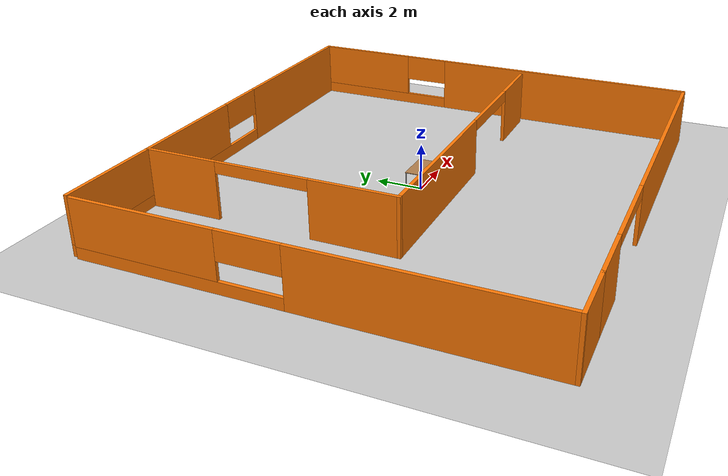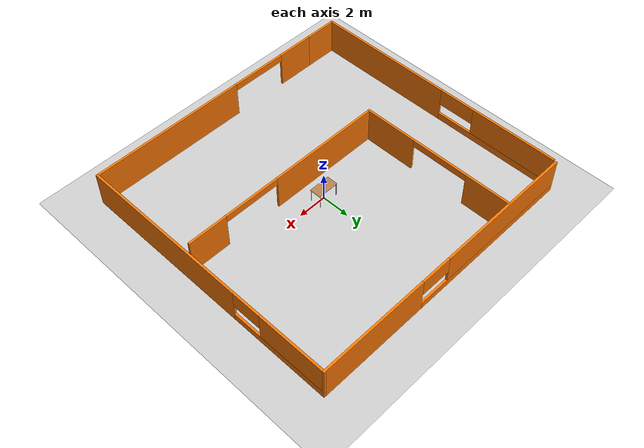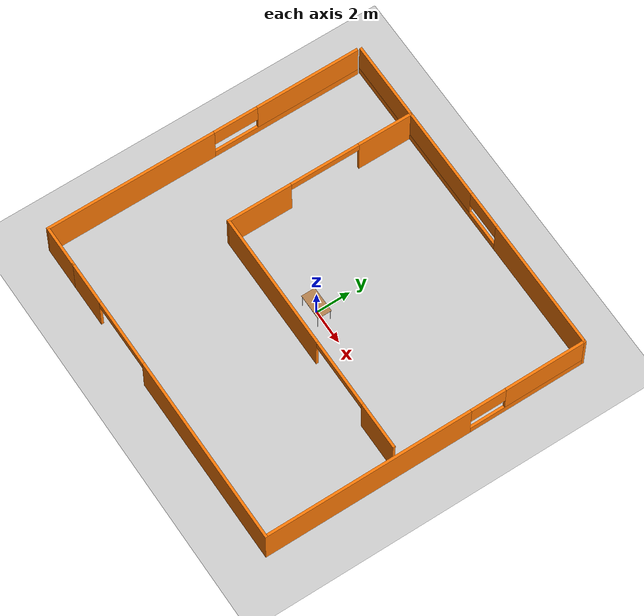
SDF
<sdf version="1.6">
 <world name="default">
  <include><uri>model://ground_plane</uri></include>
  <model name="ground_plane">
   <static>1</static>
   <link name="link">
    <collision name="collision">
     <geometry><plane><normal>0 0 1</normal><size>100 100</size></plane></geometry>
     <surface>
      <contact><collide_bitmask>65535</collide_bitmask></contact>
      <friction><ode><mu>100</mu><mu2>50</mu2></ode></friction>
     </surface>
    </collision>
    <visual name="visual">
     <cast_shadows>0</cast_shadows>
     <geometry><plane><normal>0 0 1</normal><size>100 100</size></plane></geometry>
     <material>
      <script><uri>file://media/materials/scripts/gazebo.material</uri><name>Gazebo/Grey</name></script>
     </material>
    </visual>
   </link>
  </model>
  <model name="table">
   <static>1</static>
   <link name="link">
    <collision name="surface">
     <pose>0 0 1 0 -0 0</pose>
     <geometry><box><size>1.5 0.8 0.03</size></box></geometry>
     <surface><friction><ode><mu>0.6</mu><mu2>0.6</mu2></ode></friction></surface>
    </collision>
    <visual name="visual1">
     <pose>0 0 1 0 -0 0</pose>
     <geometry><box><size>1.5 0.8 0.03</size></box></geometry>
     <material>
      <script><uri>file://media/materials/scripts/gazebo.material</uri><name>Gazebo/Wood</name></script>
     </material>
    </visual>
    <collision name="front_left_leg">
     <pose>0.68 0.38 0.5 0 -0 0</pose>
     <geometry><cylinder><radius>0.02</radius><length>1</length></cylinder></geometry>
    </collision>
    <visual name="front_left_leg">
     <pose>0.68 0.38 0.5 0 -0 0</pose>
     <geometry><cylinder><radius>0.02</radius><length>1</length></cylinder></geometry>
     <material>
      <script><uri>file://media/materials/scripts/gazebo.material</uri><name>Gazebo/Grey</name></script>
     </material>
    </visual>
    <collision name="front_right_leg">
     <pose>0.68 -0.38 0.5 0 -0 0</pose>
     <geometry><cylinder><radius>0.02</radius><length>1</length></cylinder></geometry>
    </collision>
    <visual name="front_right_leg">
     <pose>0.68 -0.38 0.5 0 -0 0</pose>
     <geometry><cylinder><radius>0.02</radius><length>1</length></cylinder></geometry>
     <material>
      <script><uri>file://media/materials/scripts/gazebo.material</uri><name>Gazebo/Grey</name></script>
     </material>
    </visual>
    <collision name="back_right_leg">
     <pose>-0.68 -0.38 0.5 0 -0 0</pose>
     <geometry><cylinder><radius>0.02</radius><length>1</length></cylinder></geometry>
    </collision>
    <visual name="back_right_leg">
     <pose>-0.68 -0.38 0.5 0 -0 0</pose>
     <geometry><cylinder><radius>0.02</radius><length>1</length></cylinder></geometry>
     <material>
      <script><uri>file://media/materials/scripts/gazebo.material</uri><name>Gazebo/Grey</name></script>
     </material>
    </visual>
    <collision name="back_left_leg">
     <pose>-0.68 0.38 0.5 0 -0 0</pose>
     <geometry><cylinder><radius>0.02</radius><length>1</length></cylinder></geometry>
    </collision>
    <visual name="back_left_leg">
     <pose>-0.68 0.38 0.5 0 -0 0</pose>
     <geometry><cylinder><radius>0.02</radius><length>1</length></cylinder></geometry>
     <material>
      <script><uri>file://media/materials/scripts/gazebo.material</uri><name>Gazebo/Grey</name></script>
     </material>
    </visual>
   </link>
  </model>
  <model name="buildingmodel">
   <pose>-0.320081 0.0932 0 0 -0 0</pose>
   <link name="Wall_16">
    <pose>1.175 -9.3 0 0 -0 0</pose>
    <visual name="Wall_16_Visual_0">
     <pose>-7.45803 0 1.25 0 -0 0</pose>
     <geometry><box><size>2.58395 0.15 2.5</size></box></geometry>
     <material>
      <script><uri>file://media/materials/scripts/gazebo.material</uri><name>Gazebo/Grey</name></script>
      <ambient>0.996078 0.47451 0.0196078 1</ambient>
     </material>
     <meta><layer>0</layer></meta>
    </visual>
    <collision name="Wall_16_Collision_0">
     <geometry><box><size>2.58395 0.15 2.5</size></box></geometry>
     <pose>-7.45803 0 1.25 0 -0 0</pose>
    </collision>
    <visual name="Wall_16_Visual_1">
     <pose>3.26705 0 1.25 0 -0 0</pose>
     <geometry><box><size>10.9659 0.15 2.5</size></box></geometry>
     <material>
      <script><uri>file://media/materials/scripts/gazebo.material</uri><name>Gazebo/Grey</name></script>
      <ambient>0.996078 0.47451 0.0196078 1</ambient>
     </material>
     <meta><layer>0</layer></meta>
    </visual>
    <collision name="Wall_16_Collision_1">
     <geometry><box><size>10.9659 0.15 2.5</size></box></geometry>
     <pose>3.26705 0 1.25 0 -0 0</pose>
    </collision>
    <visual name="Wall_16_Visual_2">
     <pose>-4.19098 0 2.25 0 -0 0</pose>
     <geometry><box><size>3.95016 0.15 0.5</size></box></geometry>
     <material>
      <script><uri>file://media/materials/scripts/gazebo.material</uri><name>Gazebo/Grey</name></script>
      <ambient>0.996078 0.47451 0.0196078 1</ambient>
     </material>
     <meta><layer>0</layer></meta>
    </visual>
    <collision name="Wall_16_Collision_2">
     <geometry><box><size>3.95016 0.15 0.5</size></box></geometry>
     <pose>-4.19098 0 2.25 0 -0 0</pose>
    </collision>
   </link>
   <link name="Wall_19">
    <collision name="Wall_19_Collision">
     <geometry><box><size>2.5 0.15 2.5</size></box></geometry>
     <pose>0 0 1.25 0 -0 0</pose>
    </collision>
    <visual name="Wall_19_Visual">
     <pose>0 0 1.25 0 -0 0</pose>
     <geometry><box><size>2.5 0.15 2.5</size></box></geometry>
     <material>
      <script><uri>file://media/materials/scripts/gazebo.material</uri><name>Gazebo/Grey</name></script>
      <ambient>0.996078 0.47451 0.0196078 1</ambient>
     </material>
     <meta><layer>0</layer></meta>
    </visual>
    <pose>-8.675 -9.3 0 0 -0 3.14159</pose>
   </link>
   <link name="Wall_39">
    <pose>9.85 0 0 0 -0 1.5708</pose>
    <visual name="Wall_39_Visual_0">
     <pose>-3.40224 0 1.25 0 -0 0</pose>
     <geometry><box><size>11.9455 0.15 2.5</size></box></geometry>
     <material>
      <script><uri>file://media/materials/scripts/gazebo.material</uri><name>Gazebo/Grey</name></script>
      <ambient>0.996078 0.47451 0.0196078 1</ambient>
     </material>
     <meta><layer>0</layer></meta>
    </visual>
    <collision name="Wall_39_Collision_0">
     <geometry><box><size>11.9455 0.15 2.5</size></box></geometry>
     <pose>-3.40224 0 1.25 0 -0 0</pose>
    </collision>
    <visual name="Wall_39_Visual_1">
     <pose>5.97276 0 0.25 0 -0 0</pose>
     <geometry><box><size>6.80448 0.15 0.5</size></box></geometry>
     <material>
      <script><uri>file://media/materials/scripts/gazebo.material</uri><name>Gazebo/Grey</name></script>
      <ambient>0.996078 0.47451 0.0196078 1</ambient>
     </material>
     <meta><layer>0</layer></meta>
    </visual>
    <collision name="Wall_39_Collision_1">
     <geometry><box><size>6.80448 0.15 0.5</size></box></geometry>
     <pose>5.97276 0 0.25 0 -0 0</pose>
    </collision>
    <visual name="Wall_39_Visual_2">
     <pose>6.99343 0 1.5 0 -0 0</pose>
     <geometry><box><size>4.76314 0.15 2</size></box></geometry>
     <material>
      <script><uri>file://media/materials/scripts/gazebo.material</uri><name>Gazebo/Grey</name></script>
      <ambient>0.996078 0.47451 0.0196078 1</ambient>
     </material>
     <meta><layer>0</layer></meta>
    </visual>
    <collision name="Wall_39_Collision_2">
     <geometry><box><size>4.76314 0.15 2</size></box></geometry>
     <pose>6.99343 0 1.5 0 -0 0</pose>
    </collision>
    <visual name="Wall_39_Visual_3">
     <pose>3.59119 0 1.9 0 -0 0</pose>
     <geometry><box><size>2.04134 0.15 1.2</size></box></geometry>
     <material>
      <script><uri>file://media/materials/scripts/gazebo.material</uri><name>Gazebo/Grey</name></script>
      <ambient>0.996078 0.47451 0.0196078 1</ambient>
     </material>
     <meta><layer>0</layer></meta>
    </visual>
    <collision name="Wall_39_Collision_3">
     <geometry><box><size>2.04134 0.15 1.2</size></box></geometry>
     <pose>3.59119 0 1.9 0 -0 0</pose>
    </collision>
   </link>
   <link name="Wall_40">
    <pose>0.05 9.3 0 0 -0 3.14159</pose>
    <visual name="Wall_40_Visual_0">
     <pose>-6.06574 0 1.25 0 -0 0</pose>
     <geometry><box><size>7.61852 0.15 2.5</size></box></geometry>
     <material>
      <script><uri>file://media/materials/scripts/gazebo.material</uri><name>Gazebo/Grey</name></script>
      <ambient>0.996078 0.47451 0.0196078 1</ambient>
     </material>
     <meta><layer>0</layer></meta>
    </visual>
    <collision name="Wall_40_Collision_0">
     <geometry><box><size>7.61852 0.15 2.5</size></box></geometry>
     <pose>-6.06574 0 1.25 0 -0 0</pose>
    </collision>
    <visual name="Wall_40_Visual_1">
     <pose>3.80926 0 0.25 0 -0 0</pose>
     <geometry><box><size>12.1315 0.15 0.5</size></box></geometry>
     <material>
      <script><uri>file://media/materials/scripts/gazebo.material</uri><name>Gazebo/Grey</name></script>
      <ambient>0.996078 0.47451 0.0196078 1</ambient>
     </material>
     <meta><layer>0</layer></meta>
    </visual>
    <collision name="Wall_40_Collision_1">
     <geometry><box><size>12.1315 0.15 0.5</size></box></geometry>
     <pose>3.80926 0 0.25 0 -0 0</pose>
    </collision>
    <visual name="Wall_40_Visual_2">
     <pose>4.90087 0 1.5 0 -0 0</pose>
     <geometry><box><size>9.94827 0.15 2</size></box></geometry>
     <material>
      <script><uri>file://media/materials/scripts/gazebo.material</uri><name>Gazebo/Grey</name></script>
      <ambient>0.996078 0.47451 0.0196078 1</ambient>
     </material>
     <meta><layer>0</layer></meta>
    </visual>
    <collision name="Wall_40_Collision_2">
     <geometry><box><size>9.94827 0.15 2</size></box></geometry>
     <pose>4.90087 0 1.5 0 -0 0</pose>
    </collision>
    <visual name="Wall_40_Visual_3">
     <pose>-1.16487 0 1.9 0 -0 0</pose>
     <geometry><box><size>2.18321 0.15 1.2</size></box></geometry>
     <material>
      <script><uri>file://media/materials/scripts/gazebo.material</uri><name>Gazebo/Grey</name></script>
      <ambient>0.996078 0.47451 0.0196078 1</ambient>
     </material>
     <meta><layer>0</layer></meta>
    </visual>
    <collision name="Wall_40_Collision_3">
     <geometry><box><size>2.18321 0.15 1.2</size></box></geometry>
     <pose>-1.16487 0 1.9 0 -0 0</pose>
    </collision>
   </link>
   <link name="Wall_42">
    <pose>-9.85 -0.125 0 0 -0 1.5708</pose>
    <visual name="Wall_42_Visual_0">
     <pose>-4.32759 0 1.25 0 -0 0</pose>
     <geometry><box><size>9.84482 0.15 2.5</size></box></geometry>
     <material>
      <script><uri>file://media/materials/scripts/gazebo.material</uri><name>Gazebo/Grey</name></script>
      <ambient>0.996078 0.47451 0.0196078 1</ambient>
     </material>
     <meta><layer>0</layer></meta>
    </visual>
    <collision name="Wall_42_Collision_0">
     <geometry><box><size>9.84482 0.15 2.5</size></box></geometry>
     <pose>-4.32759 0 1.25 0 -0 0</pose>
    </collision>
    <visual name="Wall_42_Visual_1">
     <pose>4.92241 0 0.25 0 -0 0</pose>
     <geometry><box><size>8.65518 0.15 0.5</size></box></geometry>
     <material>
      <script><uri>file://media/materials/scripts/gazebo.material</uri><name>Gazebo/Grey</name></script>
      <ambient>0.996078 0.47451 0.0196078 1</ambient>
     </material>
     <meta><layer>0</layer></meta>
    </visual>
    <collision name="Wall_42_Collision_1">
     <geometry><box><size>8.65518 0.15 0.5</size></box></geometry>
     <pose>4.92241 0 0.25 0 -0 0</pose>
    </collision>
    <visual name="Wall_42_Visual_2">
     <pose>6.20908 0 1.5 0 -0 0</pose>
     <geometry><box><size>6.08183 0.15 2</size></box></geometry>
     <material>
      <script><uri>file://media/materials/scripts/gazebo.material</uri><name>Gazebo/Grey</name></script>
      <ambient>0.996078 0.47451 0.0196078 1</ambient>
     </material>
     <meta><layer>0</layer></meta>
    </visual>
    <collision name="Wall_42_Collision_2">
     <geometry><box><size>6.08183 0.15 2</size></box></geometry>
     <pose>6.20908 0 1.5 0 -0 0</pose>
    </collision>
    <visual name="Wall_42_Visual_3">
     <pose>1.88149 0 1.9 0 -0 0</pose>
     <geometry><box><size>2.57335 0.15 1.2</size></box></geometry>
     <material>
      <script><uri>file://media/materials/scripts/gazebo.material</uri><name>Gazebo/Grey</name></script>
      <ambient>0.996078 0.47451 0.0196078 1</ambient>
     </material>
     <meta><layer>0</layer></meta>
    </visual>
    <collision name="Wall_42_Collision_3">
     <geometry><box><size>2.57335 0.15 1.2</size></box></geometry>
     <pose>1.88149 0 1.9 0 -0 0</pose>
    </collision>
   </link>
   <link name="Wall_45">
    <pose>2.02344 -1.60383 0 0 -0 3.14159</pose>
    <visual name="Wall_45_Visual_0">
     <pose>-6.0053 0 1.25 0 -0 0</pose>
     <geometry><box><size>2.7394 0.15 2.5</size></box></geometry>
     <material>
      <script><uri>file://media/materials/scripts/gazebo.material</uri><name>Gazebo/Grey</name></script>
      <ambient>0.996078 0.47451 0.0196078 1</ambient>
     </material>
     <meta><layer>0</layer></meta>
    </visual>
    <collision name="Wall_45_Collision_0">
     <geometry><box><size>2.7394 0.15 2.5</size></box></geometry>
     <pose>-6.0053 0 1.25 0 -0 0</pose>
    </collision>
    <visual name="Wall_45_Visual_1">
     <pose>3.35584 0 1.25 0 -0 0</pose>
     <geometry><box><size>8.03832 0.15 2.5</size></box></geometry>
     <material>
      <script><uri>file://media/materials/scripts/gazebo.material</uri><name>Gazebo/Grey</name></script>
      <ambient>0.996078 0.47451 0.0196078 1</ambient>
     </material>
     <meta><layer>0</layer></meta>
    </visual>
    <collision name="Wall_45_Collision_1">
     <geometry><box><size>8.03832 0.15 2.5</size></box></geometry>
     <pose>3.35584 0 1.25 0 -0 0</pose>
    </collision>
    <visual name="Wall_45_Visual_2">
     <pose>-2.64946 0 2.25 0 -0 0</pose>
     <geometry><box><size>3.97228 0.15 0.5</size></box></geometry>
     <material>
      <script><uri>file://media/materials/scripts/gazebo.material</uri><name>Gazebo/Grey</name></script>
      <ambient>0.996078 0.47451 0.0196078 1</ambient>
     </material>
     <meta><layer>0</layer></meta>
    </visual>
    <collision name="Wall_45_Collision_2">
     <geometry><box><size>3.97228 0.15 0.5</size></box></geometry>
     <pose>-2.64946 0 2.25 0 -0 0</pose>
    </collision>
   </link>
   <link name="Wall_46">
    <pose>-5.27656 3.82117 0 0 -0 1.5708</pose>
    <visual name="Wall_46_Visual_0">
     <pose>-3.61661 0 1.25 0 -0 0</pose>
     <geometry><box><size>3.76677 0.15 2.5</size></box></geometry>
     <material>
      <script><uri>file://media/materials/scripts/gazebo.material</uri><name>Gazebo/Grey</name></script>
      <ambient>0.996078 0.47451 0.0196078 1</ambient>
     </material>
     <meta><layer>0</layer></meta>
    </visual>
    <collision name="Wall_46_Collision_0">
     <geometry><box><size>3.76677 0.15 2.5</size></box></geometry>
     <pose>-3.61661 0 1.25 0 -0 0</pose>
    </collision>
    <visual name="Wall_46_Visual_1">
     <pose>3.9047 0 1.25 0 -0 0</pose>
     <geometry><box><size>3.19059 0.15 2.5</size></box></geometry>
     <material>
      <script><uri>file://media/materials/scripts/gazebo.material</uri><name>Gazebo/Grey</name></script>
      <ambient>0.996078 0.47451 0.0196078 1</ambient>
     </material>
     <meta><layer>0</layer></meta>
    </visual>
    <collision name="Wall_46_Collision_1">
     <geometry><box><size>3.19059 0.15 2.5</size></box></geometry>
     <pose>3.9047 0 1.25 0 -0 0</pose>
    </collision>
    <visual name="Wall_46_Visual_2">
     <pose>0.288089 0 2.25 0 -0 0</pose>
     <geometry><box><size>4.04264 0.15 0.5</size></box></geometry>
     <material>
      <script><uri>file://media/materials/scripts/gazebo.material</uri><name>Gazebo/Grey</name></script>
      <ambient>0.996078 0.47451 0.0196078 1</ambient>
     </material>
     <meta><layer>0</layer></meta>
    </visual>
    <collision name="Wall_46_Collision_2">
     <geometry><box><size>4.04264 0.15 0.5</size></box></geometry>
     <pose>0.288089 0 2.25 0 -0 0</pose>
    </collision>
   </link>
   <static>1</static>
  </model>
 </world>
</sdf>
